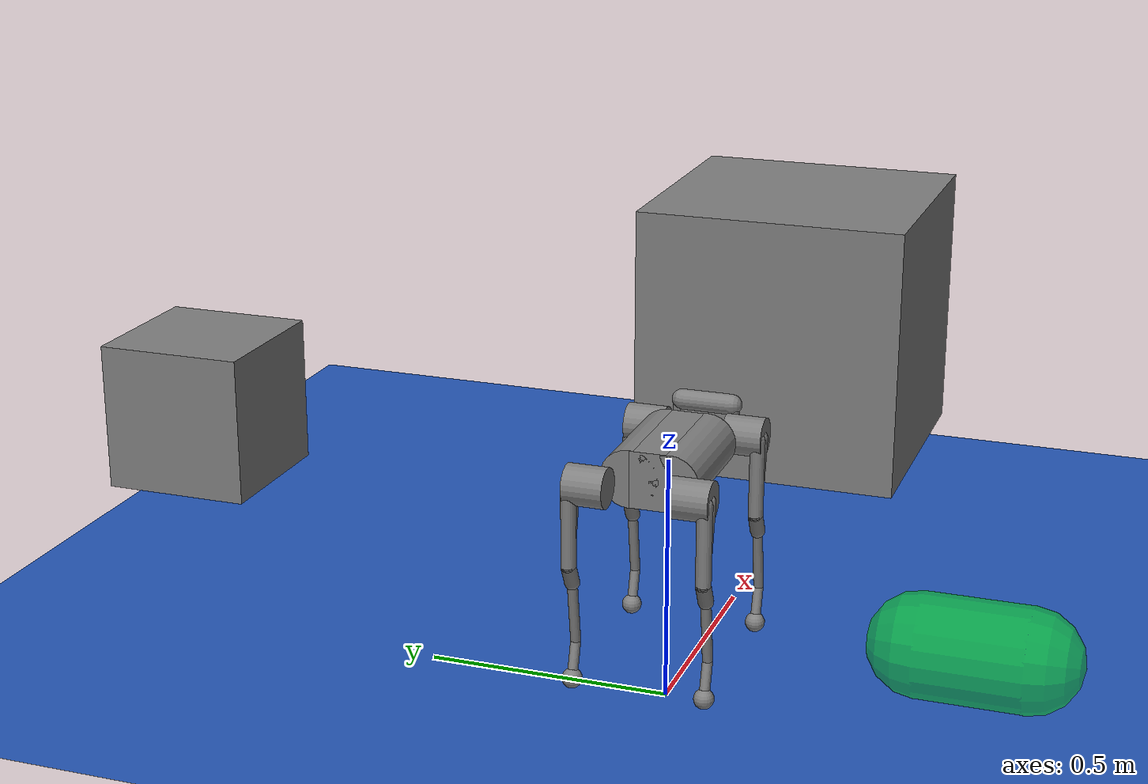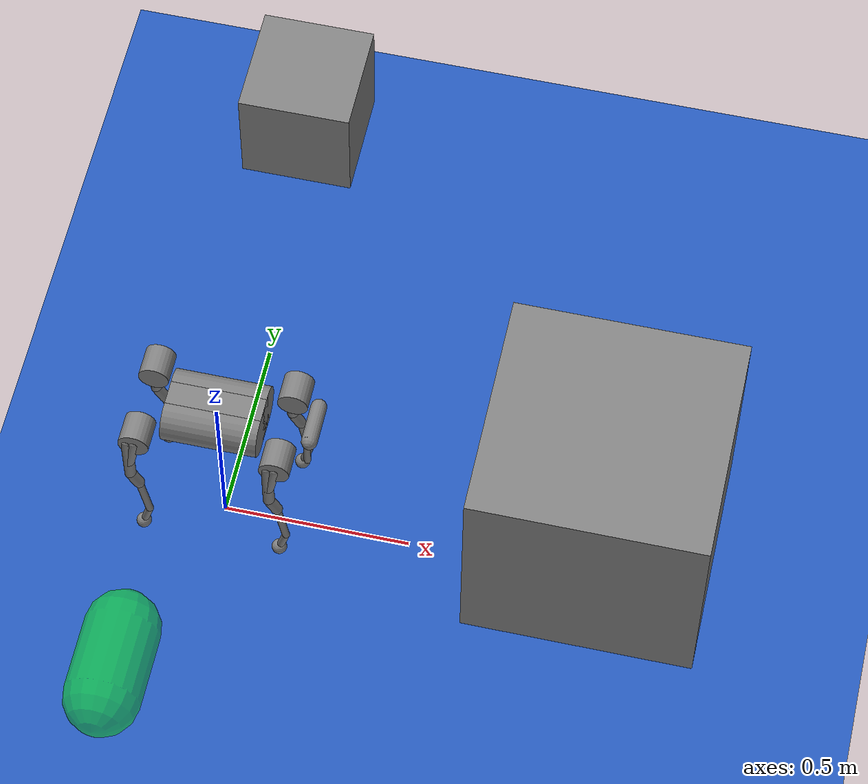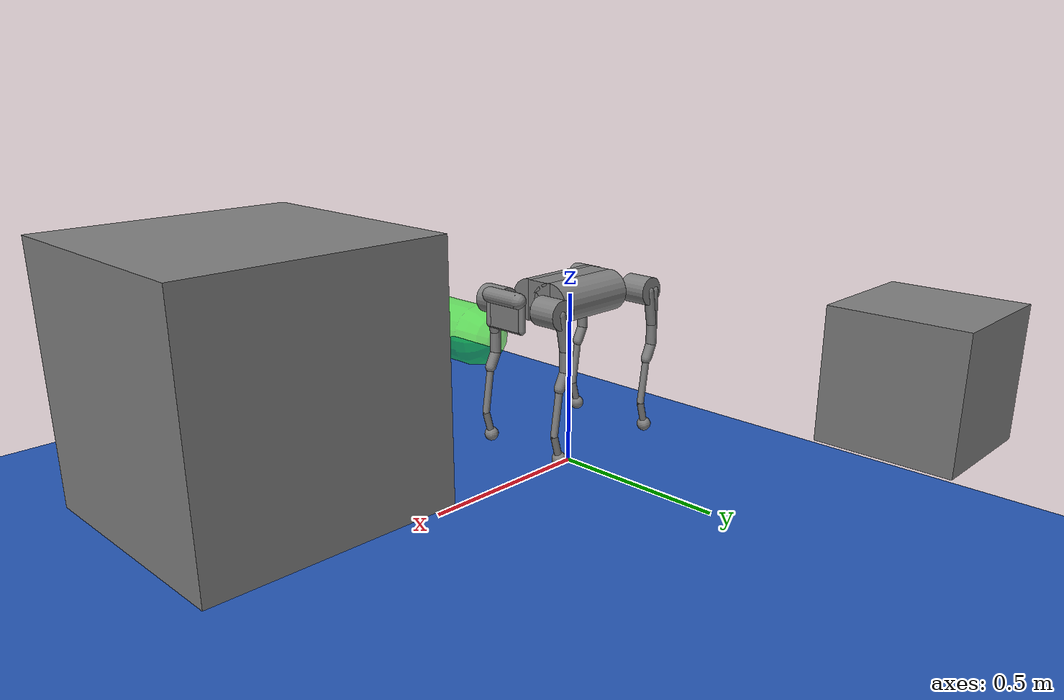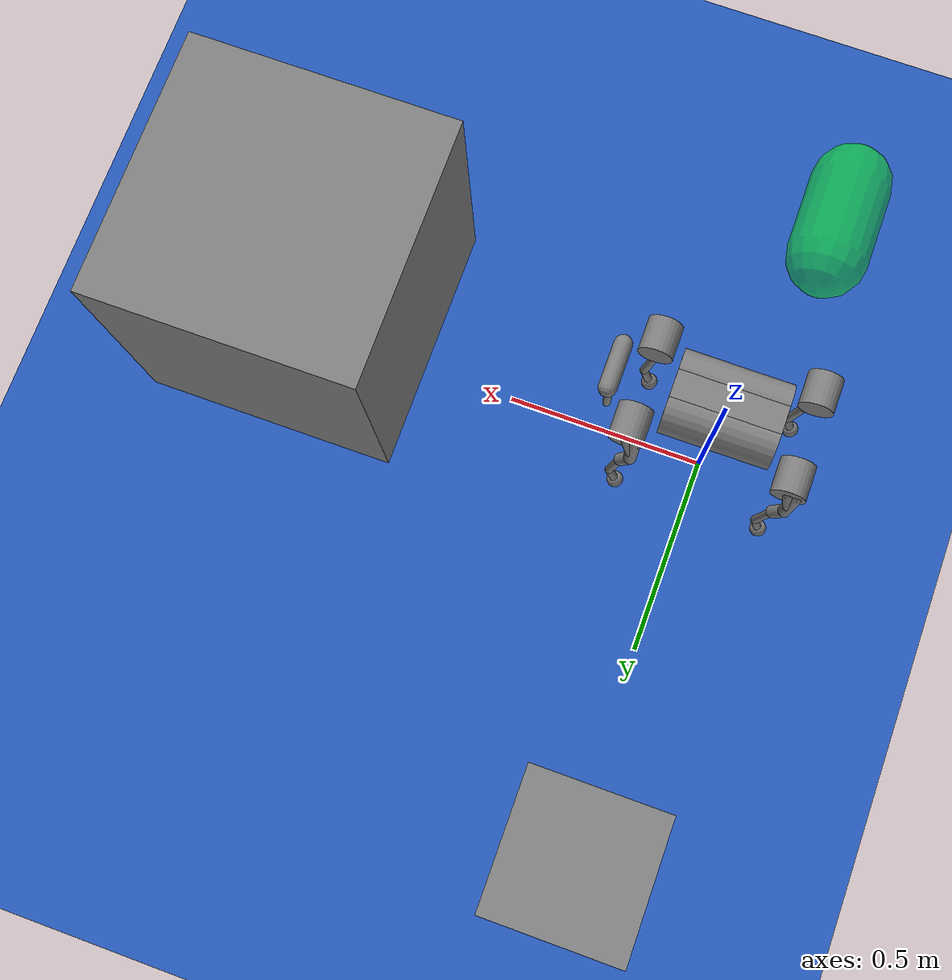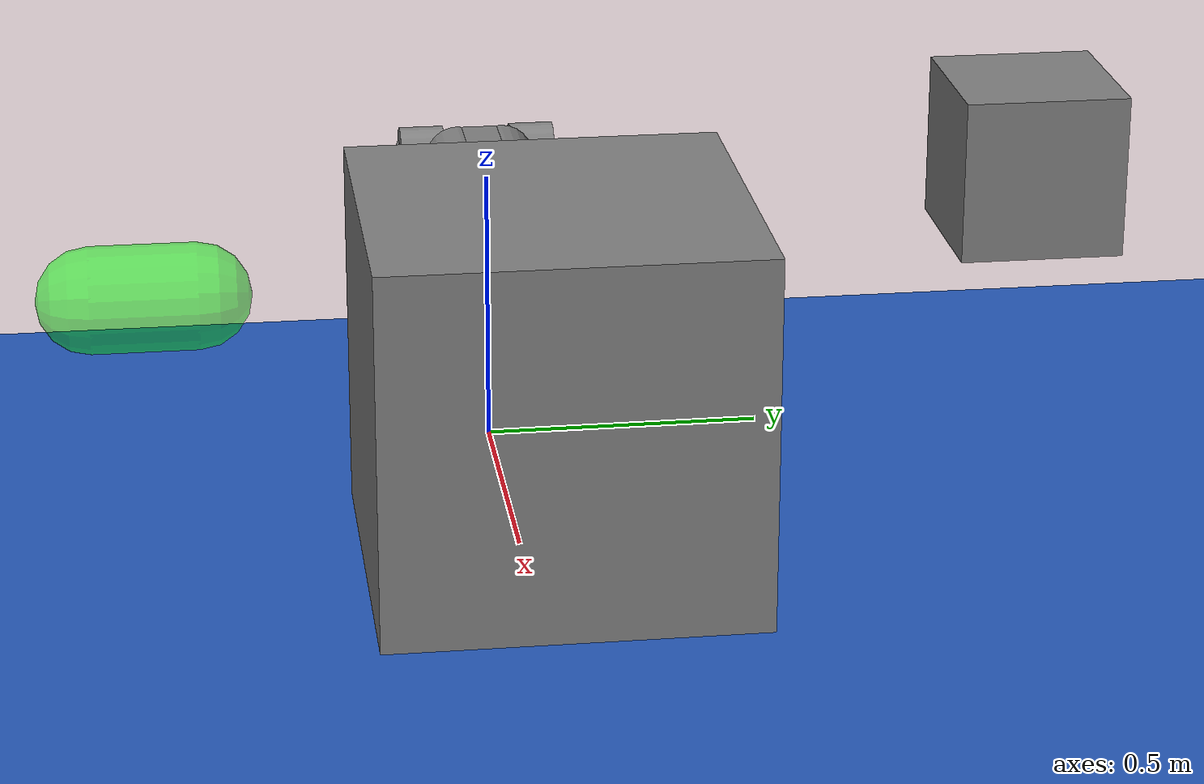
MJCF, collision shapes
<mujoco model="Quadruped Terrain">
  <include file="../common.xml"/>

  <size memory="1M"/>

  <custom>
    <text name="task_transition" data="Loop" />
    <numeric name="agent_planner" data="0" />
    <numeric name="agent_horizon" data="0.25" />
    <numeric name="agent_timestep" data="0.01" />
    <numeric name="sampling_spline_points" data="5" />
    <numeric name="sampling_exploration" data="0.3" />
    <numeric name="gradient_spline_points" data="5" />
    <numeric name="residual_Height Goal" data="0.25" />
	<numeric name="residual_select_ReachObjectA" data="0"/>
	<text name="residual_list_ReachObjectA" data="position|box1|box2|FR|FL|RR|RL"/>
	<numeric name="residual_select_ReachObjectB" data="0"/>
	<text name="residual_list_ReachObjectB" data="position|box1|box2|FR|FL|RR|RL"/>

  </custom>

  <worldbody>
    <light pos="0 0 1.5" dir="0 0 -1" diffuse="0.7 0.7 0.7" specular="0.3 0.3 0.3"
        directional="true" castshadow="true"/>
    <body name="goal" mocap="true" pos="-0.125 -0.625 0.25" quat="0.7071 0 0 -0.7071">
        <geom type="capsule" size="0.1 0.1 0.05" contype="0" conaffinity="0" rgba="0 1 0 .5" fromto="-0.1 0 0 0.1 0 0"/>
    </body>
    <geom name="floor" size="50 50 0.05" pos="0 0 -0.01" type="plane" material="blue_grid"/>
	<body name="box1" pos="1 0 0.5">
      <joint type="free"/>
      <geom type="box" size="0.3 0.3 0.3" mass=".3"/>
      <site name="box1" type="box" pos="0 0 0" size="0.3 0.3 0.3"/>
    </body>
	<body name="box2" pos="0 1 0.5">
      <joint type="free"/>
      <geom type="box" size="0.15 0.15 0.15" mass=".3"/>
      <site name="box2" type="box" pos="0 0 0" size="0.15 0.15 0.15"/>
    </body>

  </worldbody>

  <include file="a1.xml" />

  <default>
    <default class="task">
      <site rgba="1 0 0 1" size=".02" group="5"/>
      <default class="flight">
        <site rgba="1 .3 .3 1" size="0.019" group="5"/>
      </default>
      <default class="stance">
        <site rgba=".3 1 .3 1" size=".018" group="4"/>
      </default>
    </default>
    <default class="prop">
      <geom type="box" rgba="0 0.4 1 1"/>
    </default>
  </default>

  <!-- position actuators -->
  <actuator>
    <position class="abduction" name="FR_hip" joint="FR_hip_joint"/>
    <position class="hip" name="FR_thigh" joint="FR_thigh_joint"/>
    <position class="knee" name="FR_calf" joint="FR_calf_joint"/>
    <position class="abduction" name="FL_hip" joint="FL_hip_joint"/>
    <position class="hip" name="FL_thigh" joint="FL_thigh_joint"/>
    <position class="knee" name="FL_calf" joint="FL_calf_joint"/>
    <position class="abduction" name="RR_hip" joint="RR_hip_joint"/>
    <position class="hip" name="RR_thigh" joint="RR_thigh_joint"/>
    <position class="knee" name="RR_calf" joint="RR_calf_joint"/>
    <position class="abduction" name="RL_hip" joint="RL_hip_joint"/>
    <position class="hip" name="RL_thigh" joint="RL_thigh_joint"/>
    <position class="knee" name="RL_calf" joint="RL_calf_joint"/>
  </actuator>

  <sensor>
    <user name="Stand" dim="1" user="0 1.0 0.0 10.0" />
    <user name="Body Pos." dim="3" user="0 5.0 0.0 100.0" />
    <user name="Body Rot." dim="9" user="0 1.0 0.0 10.0" />
    <user name="Control" dim="12" user="0 0.25 0.0 1.0" />
	<user name="Reach" dim="3" user="2 0 0 5 0.1"/>
    <framepos      name="trace0" objtype="body" objname="trunk"/>
    <framepos      name="position" objtype="body" objname="trunk"/>
    <framequat     name="orientation" objtype="xbody" objname="trunk"/>
    <subtreecom    name="torso_subtreecom" body="trunk"/>
    <subtreelinvel name="torso_subtreelinvel" body="trunk"/>
    <framezaxis    name="torso_zaxis" objtype="xbody" objname="trunk"/>
    <framepos      name="FR" objtype="site" objname="FR"/>
    <framepos      name="FL" objtype="site" objname="FL"/>
    <framepos      name="RR" objtype="site" objname="RR"/>
    <framepos      name="RL" objtype="site" objname="RL"/>
    <framepos      name="box1" objtype="site" objname="box1"/>
    <framepos      name="box2" objtype="site" objname="box2"/>
  </sensor>
</mujoco>

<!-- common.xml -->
<mujoco>

    <visual>
        <headlight ambient=".4 .4 .4" diffuse=".8 .8 .8" specular="0.1 0.1 0.1"/>
        <map znear=".01"/>
        <quality shadowsize="2048"/>
        <global elevation="-15"/>
    </visual>

    <asset>
        <texture name="blue_grid" type="2d" builtin="checker" rgb1=".02 .14 .44" rgb2=".27 .55 1" width="300" height="300" mark="edge" markrgb="1 1 1"/>
        <material name="blue_grid" texture="blue_grid" texrepeat="1 1" texuniform="true" reflectance=".2"/>

        <texture name="grey_grid" type="2d" builtin="checker" rgb1=".26 .26 .26" rgb2=".6 .6 .6" width="300" height="300" mark="edge" markrgb="1 1 1"/>
        <material name="grey_grid" texture="grey_grid" texrepeat="1 1" texuniform="true" reflectance=".2"/>
        <texture name="skybox" type="skybox" builtin="gradient" rgb1=".66 .79 1" rgb2=".9 .91 .93" width="800" height="800"/>

        <material name="self" rgba=".7 .5 .3 1"/>
        <material name="self_default" rgba=".7 .5 .3 1"/>
        <material name="self_highlight" rgba="0 .5 .3 1"/>
        <material name="effector" rgba=".7 .4 .2 1"/>
        <material name="effector_default" rgba=".7 .4 .2 1"/>
        <material name="effector_highlight" rgba="0 .5 .3 1"/>
        <material name="decoration" rgba=".2 .6 .3 1"/>
        <material name="eye" rgba="0 .2 1 1"/>
        <material name="target" rgba=".6 .3 .3 1"/>
        <material name="target_default" rgba=".6 .3 .3 1"/>
        <material name="target_highlight" rgba=".6 .3 .3 .4"/>
        <material name="site" rgba=".5 .5 .5 .3"/>
    </asset>

    <size memory="1M"/>

    <statistic extent="0.4" center="0.3 0.1 0"/>

    <visual>
        <quality shadowsize="8192"/>
        <global azimuth="180" elevation="-30"/>
    </visual>

    <default>
        <geom friction="1.0"/>
    </default>

    <compiler angle="radian" autolimits="true"/>

    <asset>
        <mesh name="apple" file="../../shared_assets/apple/apple.obj" />
        <mesh name="apple_contact0" file="../../shared_assets/apple/contact0.stl"  />
        <mesh name="apple_contact1" file="../../shared_assets/apple/contact1.stl"  />

        <mesh name="doorknob" file="../../shared_assets/doorknob/doorknob.obj" />

        <mesh name="flashlight" file="../../shared_assets/flashlight/flashlight.obj" />
        <mesh name="flashlight_contact0" file="../../shared_assets/flashlight/contact0.stl"  />
        <mesh name="flashlight_contact1" file="../../shared_assets/flashlight/contact1.stl"  />

        <mesh name="hammer" file="../../shared_assets/hammer/hammer.obj" />
        <mesh name="hammer_contact0" file="../../shared_assets/hammer/contact0.stl"  />
        <mesh name="hammer_contact1" file="../../shared_assets/hammer/contact1.stl"  />

        <mesh name="phone" file="../../shared_assets/phone/phone.obj" />
        <mesh name="phone_contact0" file="../../shared_assets/phone/contact0.stl"  />
        <mesh name="phone_contact1" file="../../shared_assets/phone/contact1.stl"  />
        <mesh name="phone_contact2" file="../../shared_assets/phone/contact2.stl"  />

        <mesh name="stapler" file="../../shared_assets/stapler/stapler.obj" />
        <mesh name="stapler_contact0" file="../../shared_assets/stapler/contact0.stl"  />
        <mesh name="stapler_contact1" file="../../shared_assets/stapler/contact1.stl"  />
        <mesh name="stapler_contact2" file="../../shared_assets/stapler/contact2.stl"  />
        <mesh name="stapler_contact3" file="../../shared_assets/stapler/contact3.stl"  />
        <mesh name="stapler_contact4" file="../../shared_assets/stapler/contact4.stl"  />

        <mesh name="waterbottle" file="../../shared_assets/waterbottle/waterbottle.obj" />
        <mesh name="waterbottle_contact0" file="../../shared_assets/waterbottle/contact0.stl"  />
        <mesh name="waterbottle_contact1" file="../../shared_assets/waterbottle/contact1.stl"  />
    </asset>

</mujoco>

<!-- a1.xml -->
<mujoco model="Unitree A1">
    <compiler angle="radian" meshdir="assets" texturedir="assets"/>

    <option cone="elliptic" impratio="10" />

    <default>
        <default class="a1">
            <geom friction="0.6" margin="0.001" condim="1" />
            <joint axis="0 1 0" damping="2" armature="0.01" frictionloss="0.2" limited="true"/>
            <position kp="50" ctrllimited="true" forcelimited="true" forcerange="-33.5 33.5"/>

            <default class="abduction">
                <joint axis="1 0 0" damping="1" range="-0.802851 0.802851"/>
                <position ctrlrange="-0.802851 0.802851"/>
            </default>

            <default class="hip">
                <joint range="-1.9472 3.28879" ref="-0.9"/>
                <position ctrlrange="-1.9472 3.28879"/>
              </default>

            <default class="knee">
                <joint range="-0.89653 0.883702" ref="1.8"/>
                <position ctrlrange="-0.89653 0.883702"/>
            </default>

            <default class="visual">
                <geom type="mesh" contype="0" conaffinity="0" group="2" material="dark"/>
            </default>

            <default class="collision">
                <geom group="3" type="capsule"/>
                <default class="hip_left">
                  <geom size="0.04 0.04" quat="1 1 0 0" type="cylinder" pos="0 0.055 0"/>
                </default>
                <default class="hip_right">
                  <geom size="0.04 0.04" quat="1 1 0 0" type="cylinder" pos="0 -0.055 0"/>
                </default>
                <default class="thigh1">
                  <geom size="0.015" fromto="-0.02 0 0 -0.02 0 -0.16"/>
                </default>
                <default class="thigh2">
                  <geom size="0.015" fromto="0 0 0 -0.02 0 -0.1"/>
                </default>
                <default class="thigh3">
                  <geom size="0.015" fromto="-0.02 0 -0.16 0 0 -0.2"/>
                </default>
                <default class="calf1">
                  <geom size="0.01" fromto="0 0 0 0.02 0 -0.13"/>
                </default>
                <default class="calf2">
                  <geom size="0.01" fromto="0.02 0 -0.13 0 0 -0.2"/>
                </default>
                <default class="foot">
                  <geom type="sphere" size="0.02" pos="0 0 -0.2" priority="1" solimp="0.015 1 0.031"
                      condim="6" friction="0.8 0.02 0.01"/>
                </default>
            </default>

        </default>
    </default>

    <asset>
        <material name="dark" specular="0" shininess="0.25" rgba="0.2 0.2 0.2 1"/>
        <texture type="2d" name="trunk_A1" file="trunk_A1.png"/>
        <material name="carbonfibre" texture="trunk_A1" specular="0" shininess="0.25"/>

        <mesh class="a1" file="calf.obj"/>
        <mesh class="a1" file="hip.obj"/>
        <mesh class="a1" file="thigh.obj"/>
        <mesh class="a1" file="thigh_mirror.obj"/>
        <mesh class="a1" file="trunk.obj"/>
    </asset>

    <worldbody>
        <body name="trunk" pos="0.0 0.0 0.5" quat="1 0 0 0" childclass="a1">
            <light pos="0 0 5" mode="trackcom" diffuse="0.8 0.8 0.8"/>
            <site name="torso"/>
            <site name="head" class="task" pos=".3 0 0"/>
            <freejoint/>
            <inertial mass="4.713" pos="0 0.0041 -0.0005"
                fullinertia="0.0158533 0.0377999 0.0456542 -3.66e-05 -6.11e-05 -2.75e-05"/>

            <geom class="visual" mesh="trunk" material="carbonfibre"/>
            <geom class="collision" size="0.125 0.04 0.057" type="box"/>
            <geom class="collision" quat="1 0 1 0" pos="0 -0.04 0" size="0.058 0.125" type="cylinder"/>
            <geom class="collision" quat="1 0 1 0" pos="0 +0.04 0" size="0.058 0.125" type="cylinder"/>
            <geom class="collision" pos="0.25 0 0" size="0.005 0.06 0.05" type="box"/>
            <geom class="collision" pos="0.25 0.06 -0.01" size="0.009 0.035"/>
            <geom class="collision" pos="0.25 -0.06 -0.01" size="0.009 0.035"/>
            <geom class="collision" pos="0.25 0 -0.05" size="0.005 0.06" quat="1 1 0 0"/>
            <geom class="collision" pos="0.255 0 0.0355" size="0.021 0.052" quat="1 1 0 0"/>

            <body name="FR_hip" pos="0.183 -0.047 0">
                <inertial mass="0.696" pos="-0.003311 -0.000635 3.1e-05"
                    quat="0.507528 0.506268 0.491507 0.494499"
                    diaginertia="0.000807752 0.00055293 0.000468983"/>
                <joint class="abduction" name="FR_hip_joint"/>
                <geom class="visual" mesh="hip" quat="0 1 0 0"/>
                <geom class="hip_right"/>
                <body name="FR_thigh" pos="0 -0.08505 0">
                  <inertial mass="1.013" pos="-0.003237 0.022327 -0.027326"
                      quat="0.999125 -0.00256393 -0.0409531 -0.00806091"
                      diaginertia="0.00555739 0.00513936 0.00133944"/>
                  <joint class="hip" name="FR_thigh_joint"/>
                  <geom class="visual" mesh="thigh_mirror"/>
                  <geom class="thigh1"/>
                  <geom class="thigh2"/>
                  <geom class="thigh3"/>
                  <body name="FR_calf" pos="0 0 -0.2">
                    <inertial mass="0.226" pos="0.00472659 0 -0.131975"
                        quat="0.706886 0.017653 0.017653 0.706886"
                        diaginertia="0.00340344 0.00339393 3.54834e-05"/>
                    <joint class="knee" name="FR_calf_joint"/>
                    <geom class="visual" mesh="calf"/>
                    <geom class="calf1"/>
                    <geom class="calf2"/>
                    <geom name="FR" class="foot"/>
                    <site name="FR" pos="0 0 -0.2" type="sphere" size=".015"/>
                  </body>
                </body>
              </body>

              <body name="FL_hip" pos="0.183 0.047 0">
                <inertial mass="0.696" pos="-0.003311 0.000635 3.1e-05"
                    quat="0.494499 0.491507 0.506268 0.507528"
                    diaginertia="0.000807752 0.00055293 0.000468983"/>
                <joint class="abduction" name="FL_hip_joint"/>
                <geom class="visual" mesh="hip"/>
                <geom class="hip_left"/>
                <geom class="collision" size="0.04 0.04" pos="0 0.055 0" quat="1 1 0 0" type="cylinder"/>
                <body name="FL_thigh" pos="0 0.08505 0">
                  <inertial mass="1.013" pos="-0.003237 -0.022327 -0.027326"
                      quat="0.999125 0.00256393 -0.0409531 0.00806091"
                      diaginertia="0.00555739 0.00513936 0.00133944"/>
                  <joint class="hip" name="FL_thigh_joint"/>
                  <geom class="visual" mesh="thigh"/>
                  <geom class="thigh1"/>
                  <geom class="thigh2"/>
                  <geom class="thigh3"/>
                  <body name="FL_calf" pos="0 0 -0.2">
                    <inertial mass="0.226" pos="0.00472659 0 -0.131975"
                        quat="0.706886 0.017653 0.017653 0.706886"
                        diaginertia="0.00340344 0.00339393 3.54834e-05"/>
                    <joint class="knee" name="FL_calf_joint"/>
                    <geom class="visual" mesh="calf"/>
                    <geom class="calf1"/>
                    <geom class="calf2"/>
                    <geom name="FL" class="foot"/>
                    <site name="FL" pos="0 0 -0.2" type="sphere" size=".015"/>
                  </body>
                </body>
              </body>

              <body name="HR_hip" pos="-0.183 -0.047 0">
                <inertial mass="0.696" pos="0.003311 -0.000635 3.1e-05"
                    quat="0.491507 0.494499 0.507528 0.506268"
                    diaginertia="0.000807752 0.00055293 0.000468983"/>
                <joint class="abduction" name="RR_hip_joint"/>
                <geom class="visual" quat="0 0 0 -1" mesh="hip"/>
                <geom class="hip_right"/>
                <body name="RR_thigh" pos="0 -0.08505 0">
                  <inertial mass="1.013" pos="-0.003237 0.022327 -0.027326"
                      quat="0.999125 -0.00256393 -0.0409531 -0.00806091"
                      diaginertia="0.00555739 0.00513936 0.00133944"/>
                  <joint class="hip" name="RR_thigh_joint"/>
                  <geom class="visual" mesh="thigh_mirror"/>
                  <geom class="thigh1"/>
                  <geom class="thigh2"/>
                  <geom class="thigh3"/>
                  <body name="RR_calf" pos="0 0 -0.2">
                    <inertial mass="0.226" pos="0.00472659 0 -0.131975"
                        quat="0.706886 0.017653 0.017653 0.706886"
                        diaginertia="0.00340344 0.00339393 3.54834e-05"/>
                    <joint class="knee" name="RR_calf_joint"/>
                    <geom class="visual" mesh="calf"/>
                    <geom class="calf1"/>
                    <geom class="calf2"/>
                    <geom name="HR" class="foot"/>
                    <site name="RR" pos="0 0 -0.2" type="sphere" size=".015"/>
                  </body>
                </body>
              </body>

              <body name="HL_hip" pos="-0.183 0.047 0">
                <inertial mass="0.696" pos="0.003311 0.000635 3.1e-05"
                    quat="0.506268 0.507528 0.494499 0.491507"
                    diaginertia="0.000807752 0.00055293 0.000468983"/>
                <joint class="abduction" name="RL_hip_joint"/>
                <geom class="visual" quat="0 0 1 0" mesh="hip"/>
                <geom class="hip_left"/>
                <body name="RL_thigh" pos="0 0.08505 0">
                  <inertial mass="1.013" pos="-0.003237 -0.022327 -0.027326"
                      quat="0.999125 0.00256393 -0.0409531 0.00806091"
                      diaginertia="0.00555739 0.00513936 0.00133944"/>
                  <joint class="hip" name="RL_thigh_joint"/>
                  <geom class="visual" mesh="thigh"/>
                  <geom class="thigh1"/>
                  <geom class="thigh2"/>
                  <geom class="thigh3"/>
                  <body name="RL_calf" pos="0 0 -0.2">
                    <inertial mass="0.226" pos="0.00472659 0 -0.131975"
                        quat="0.706886 0.017653 0.017653 0.706886"
                        diaginertia="0.00340344 0.00339393 3.54834e-05"/>
                    <joint class="knee" name="RL_calf_joint"/>
                    <geom class="visual" mesh="calf"/>
                    <geom class="calf1"/>
                    <geom class="calf2"/>
                    <geom name="HL" class="foot"/>
                    <site name="RL" pos="0 0 -0.2" type="sphere" size=".015"/>
                  </body>
                </body>
              </body>

        </body>
    </worldbody>
</mujoco>
